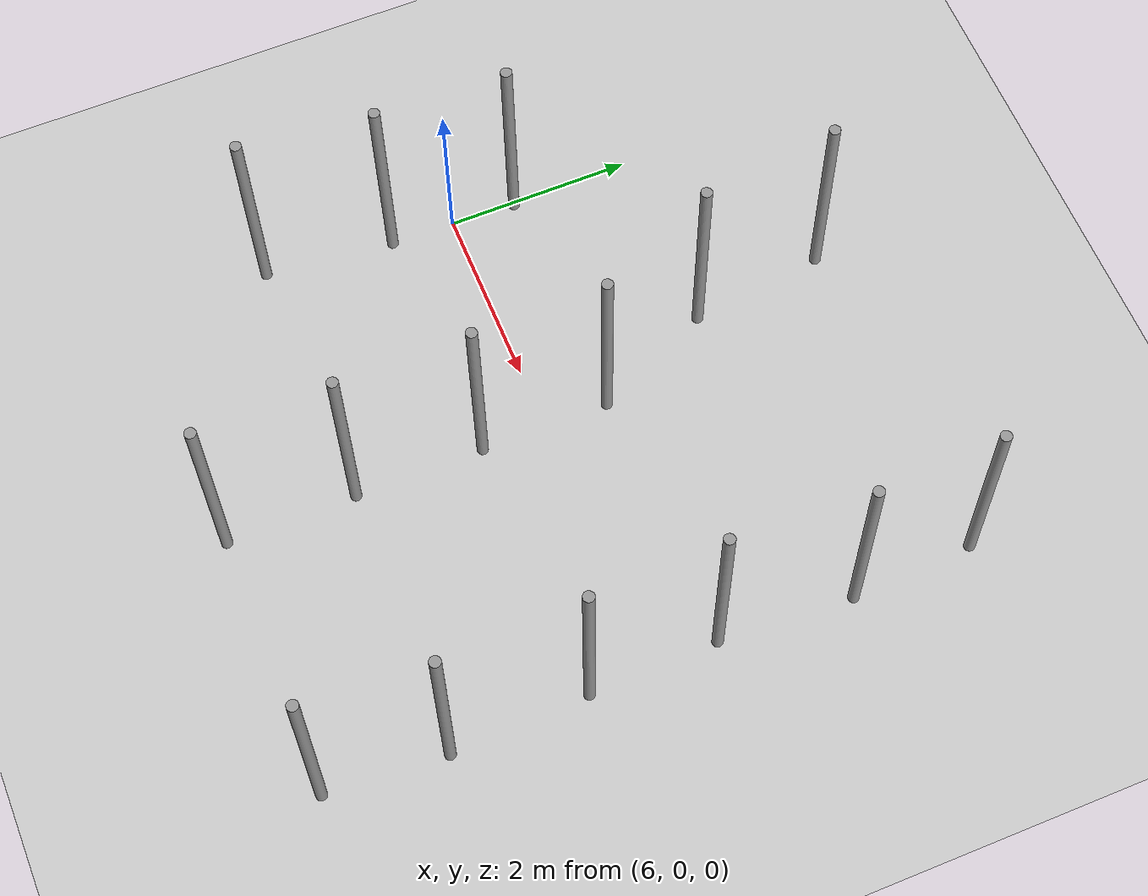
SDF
<sdf version="1.6">
 <world name="default">
  <model name="ground_plane">
   <static>1</static>
   <link name="link">
    <collision name="collision">
     <geometry><plane><normal>0 0 1</normal><size>100 100</size></plane></geometry>
     <surface><friction><ode><mu>100</mu><mu2>50</mu2></ode></friction></surface>
    </collision>
    <visual name="visual">
     <cast_shadows>0</cast_shadows>
     <geometry><plane><normal>0 0 1</normal><size>100 100</size></plane></geometry>
     <material>
      <script><uri>file://media/materials/scripts/gazebo.material</uri><name>Gazebo/Grey</name></script>
     </material>
    </visual>
   </link>
  </model>
  <model name="pole_8">
   <link name="link_0">
    <inertial>
     <mass>0.0364582</mass>
     <inertia>
      <ixx>0.00312124</ixx>
      <ixy>0</ixy>
      <ixz>0</ixz>
      <iyy>0.00312124</iyy>
      <iyz>0</iyz>
      <izz>0.00016615</izz>
     </inertia>
    </inertial>
    <visual name="visual">
     <geometry><cylinder><radius>0.06</radius><length>2.5</length></cylinder></geometry>
     <material>
      <lighting>1</lighting>
      <script><uri>file://media/materials/scripts/gazebo.material</uri><name>Gazebo/Grey</name></script>
      <ambient>0.3 0.3 0.3 1</ambient>
      <diffuse>0.7 0.7 0.7 1</diffuse>
      <specular>0.01 0.01 0.01 1</specular>
      <emissive>0 0 0 1</emissive>
      <shader type="vertex"><normal_map>__default__</normal_map></shader>
     </material>
    </visual>
    <collision name="collision">
     <geometry><cylinder><radius>0.06</radius><length>2.5</length></cylinder></geometry>
     <surface>
      <friction>
       <ode><mu>1</mu><mu2>1</mu2><fdir1>0 0 0</fdir1><slip1>0</slip1><slip2>0</slip2></ode>
       <torsional>
        <coefficient>1</coefficient>
        <patch_radius>0</patch_radius>
        <surface_radius>0</surface_radius>
        <use_patch_radius>1</use_patch_radius>
        <ode><slip>0</slip></ode>
       </torsional>
      </friction>
      <bounce><restitution_coefficient>0</restitution_coefficient><threshold>1e+06</threshold></bounce>
      <contact>
       <collide_without_contact>0</collide_without_contact>
       <collide_without_contact_bitmask>1</collide_without_contact_bitmask>
       <collide_bitmask>1</collide_bitmask>
       <ode>
        <soft_cfm>0</soft_cfm>
        <soft_erp>0.2</soft_erp>
        <kp>1e+13</kp>
        <kd>1</kd>
        <max_vel>0.01</max_vel>
        <min_depth>0</min_depth>
       </ode>
       <bullet>
        <split_impulse>1</split_impulse>
        <split_impulse_penetration_threshold>-0.01</split_impulse_penetration_threshold>
        <soft_cfm>0</soft_cfm>
        <soft_erp>0.2</soft_erp>
        <kp>1e+13</kp>
        <kd>1</kd>
       </bullet>
      </contact>
     </surface>
    </collision>
   </link>
   <static>0</static>
   <pose>5.98907 -0.698539 1.25 -1e-06 0 -0.034385</pose>
  </model>
  <model name="pole_10">
   <link name="link_0">
    <inertial>
     <mass>0.0364582</mass>
     <inertia>
      <ixx>0.00312124</ixx>
      <ixy>0</ixy>
      <ixz>0</ixz>
      <iyy>0.00312124</iyy>
      <iyz>0</iyz>
      <izz>0.00016615</izz>
     </inertia>
    </inertial>
    <visual name="visual">
     <geometry><cylinder><radius>0.06</radius><length>2.5</length></cylinder></geometry>
     <material>
      <lighting>1</lighting>
      <script><uri>file://media/materials/scripts/gazebo.material</uri><name>Gazebo/Grey</name></script>
      <ambient>0.3 0.3 0.3 1</ambient>
      <diffuse>0.7 0.7 0.7 1</diffuse>
      <specular>0.01 0.01 0.01 1</specular>
      <emissive>0 0 0 1</emissive>
      <shader type="vertex"><normal_map>__default__</normal_map></shader>
     </material>
    </visual>
    <collision name="collision">
     <geometry><cylinder><radius>0.06</radius><length>2.5</length></cylinder></geometry>
     <surface>
      <friction>
       <ode><mu>1</mu><mu2>1</mu2><fdir1>0 0 0</fdir1><slip1>0</slip1><slip2>0</slip2></ode>
       <torsional>
        <coefficient>1</coefficient>
        <patch_radius>0</patch_radius>
        <surface_radius>0</surface_radius>
        <use_patch_radius>1</use_patch_radius>
        <ode><slip>0</slip></ode>
       </torsional>
      </friction>
      <bounce><restitution_coefficient>0</restitution_coefficient><threshold>1e+06</threshold></bounce>
      <contact>
       <collide_without_contact>0</collide_without_contact>
       <collide_without_contact_bitmask>1</collide_without_contact_bitmask>
       <collide_bitmask>1</collide_bitmask>
       <ode>
        <soft_cfm>0</soft_cfm>
        <soft_erp>0.2</soft_erp>
        <kp>1e+13</kp>
        <kd>1</kd>
        <max_vel>0.01</max_vel>
        <min_depth>0</min_depth>
       </ode>
       <bullet>
        <split_impulse>1</split_impulse>
        <split_impulse_penetration_threshold>-0.01</split_impulse_penetration_threshold>
        <soft_cfm>0</soft_cfm>
        <soft_erp>0.2</soft_erp>
        <kp>1e+13</kp>
        <kd>1</kd>
       </bullet>
      </contact>
     </surface>
    </collision>
   </link>
   <static>0</static>
   <pose>6.03412 0.70143 1.24999 0 -1e-06 -0.037398</pose>
  </model>
  <model name="pole_11_clone">
   <link name="link_0">
    <inertial>
     <mass>0.0364582</mass>
     <inertia>
      <ixx>0.00312124</ixx>
      <ixy>0</ixy>
      <ixz>0</ixz>
      <iyy>0.00312124</iyy>
      <iyz>0</iyz>
      <izz>0.00016615</izz>
     </inertia>
    </inertial>
    <visual name="visual">
     <geometry><cylinder><radius>0.06</radius><length>2.5</length></cylinder></geometry>
     <material>
      <lighting>1</lighting>
      <script><uri>file://media/materials/scripts/gazebo.material</uri><name>Gazebo/Grey</name></script>
      <ambient>0.3 0.3 0.3 1</ambient>
      <diffuse>0.7 0.7 0.7 1</diffuse>
      <specular>0.01 0.01 0.01 1</specular>
      <emissive>0 0 0 1</emissive>
      <shader type="vertex"><normal_map>__default__</normal_map></shader>
     </material>
    </visual>
    <collision name="collision">
     <geometry><cylinder><radius>0.06</radius><length>2.5</length></cylinder></geometry>
     <surface>
      <friction>
       <ode><mu>1</mu><mu2>1</mu2><fdir1>0 0 0</fdir1><slip1>0</slip1><slip2>0</slip2></ode>
       <torsional>
        <coefficient>1</coefficient>
        <patch_radius>0</patch_radius>
        <surface_radius>0</surface_radius>
        <use_patch_radius>1</use_patch_radius>
        <ode><slip>0</slip></ode>
       </torsional>
      </friction>
      <bounce><restitution_coefficient>0</restitution_coefficient><threshold>1e+06</threshold></bounce>
      <contact>
       <collide_without_contact>0</collide_without_contact>
       <collide_without_contact_bitmask>1</collide_without_contact_bitmask>
       <collide_bitmask>1</collide_bitmask>
       <ode>
        <soft_cfm>0</soft_cfm>
        <soft_erp>0.2</soft_erp>
        <kp>1e+13</kp>
        <kd>1</kd>
        <max_vel>0.01</max_vel>
        <min_depth>0</min_depth>
       </ode>
       <bullet>
        <split_impulse>1</split_impulse>
        <split_impulse_penetration_threshold>-0.01</split_impulse_penetration_threshold>
        <soft_cfm>0</soft_cfm>
        <soft_erp>0.2</soft_erp>
        <kp>1e+13</kp>
        <kd>1</kd>
       </bullet>
      </contact>
     </surface>
    </collision>
   </link>
   <static>0</static>
   <pose>11.621 3.50151 1.25 -1e-06 -0 -0.044909</pose>
  </model>
  <model name="pole_0">
   <link name="link_0">
    <inertial>
     <mass>0.0364582</mass>
     <inertia>
      <ixx>0.00312124</ixx>
      <ixy>0</ixy>
      <ixz>0</ixz>
      <iyy>0.00312124</iyy>
      <iyz>0</iyz>
      <izz>0.00016615</izz>
     </inertia>
    </inertial>
    <visual name="visual">
     <geometry><cylinder><radius>0.06</radius><length>2.5</length></cylinder></geometry>
     <material>
      <lighting>1</lighting>
      <script><uri>file://media/materials/scripts/gazebo.material</uri><name>Gazebo/Grey</name></script>
      <ambient>0.3 0.3 0.3 1</ambient>
      <diffuse>0.7 0.7 0.7 1</diffuse>
      <specular>0.01 0.01 0.01 1</specular>
      <emissive>0 0 0 1</emissive>
      <shader type="vertex"><normal_map>__default__</normal_map></shader>
     </material>
    </visual>
    <collision name="collision">
     <geometry><cylinder><radius>0.06</radius><length>2.5</length></cylinder></geometry>
     <surface>
      <friction>
       <ode><mu>1</mu><mu2>1</mu2><fdir1>0 0 0</fdir1><slip1>0</slip1><slip2>0</slip2></ode>
       <torsional>
        <coefficient>1</coefficient>
        <patch_radius>0</patch_radius>
        <surface_radius>0</surface_radius>
        <use_patch_radius>1</use_patch_radius>
        <ode><slip>0</slip></ode>
       </torsional>
      </friction>
      <bounce><restitution_coefficient>0</restitution_coefficient><threshold>1e+06</threshold></bounce>
      <contact>
       <collide_without_contact>0</collide_without_contact>
       <collide_without_contact_bitmask>1</collide_without_contact_bitmask>
       <collide_bitmask>1</collide_bitmask>
       <ode>
        <soft_cfm>0</soft_cfm>
        <soft_erp>0.2</soft_erp>
        <kp>1e+13</kp>
        <kd>1</kd>
        <max_vel>0.01</max_vel>
        <min_depth>0</min_depth>
       </ode>
       <bullet>
        <split_impulse>1</split_impulse>
        <split_impulse_penetration_threshold>-0.01</split_impulse_penetration_threshold>
        <soft_cfm>0</soft_cfm>
        <soft_erp>0.2</soft_erp>
        <kp>1e+13</kp>
        <kd>1</kd>
       </bullet>
      </contact>
     </surface>
    </collision>
   </link>
   <static>0</static>
   <pose>7.92456 3.46898 1.25 -0 1e-06 -0.034419</pose>
  </model>
  <model name="pole_1">
   <link name="link_0">
    <inertial>
     <mass>0.0364582</mass>
     <inertia>
      <ixx>0.00312124</ixx>
      <ixy>0</ixy>
      <ixz>0</ixz>
      <iyy>0.00312124</iyy>
      <iyz>0</iyz>
      <izz>0.00016615</izz>
     </inertia>
    </inertial>
    <visual name="visual">
     <geometry><cylinder><radius>0.06</radius><length>2.5</length></cylinder></geometry>
     <material>
      <lighting>1</lighting>
      <script><uri>file://media/materials/scripts/gazebo.material</uri><name>Gazebo/Grey</name></script>
      <ambient>0.3 0.3 0.3 1</ambient>
      <diffuse>0.7 0.7 0.7 1</diffuse>
      <specular>0.01 0.01 0.01 1</specular>
      <emissive>0 0 0 1</emissive>
      <shader type="vertex"><normal_map>__default__</normal_map></shader>
     </material>
    </visual>
    <collision name="collision">
     <geometry><cylinder><radius>0.06</radius><length>2.5</length></cylinder></geometry>
     <surface>
      <friction>
       <ode><mu>1</mu><mu2>1</mu2><fdir1>0 0 0</fdir1><slip1>0</slip1><slip2>0</slip2></ode>
       <torsional>
        <coefficient>1</coefficient>
        <patch_radius>0</patch_radius>
        <surface_radius>0</surface_radius>
        <use_patch_radius>1</use_patch_radius>
        <ode><slip>0</slip></ode>
       </torsional>
      </friction>
      <bounce><restitution_coefficient>0</restitution_coefficient><threshold>1e+06</threshold></bounce>
      <contact>
       <collide_without_contact>0</collide_without_contact>
       <collide_without_contact_bitmask>1</collide_without_contact_bitmask>
       <collide_bitmask>1</collide_bitmask>
       <ode>
        <soft_cfm>0</soft_cfm>
        <soft_erp>0.2</soft_erp>
        <kp>1e+13</kp>
        <kd>1</kd>
        <max_vel>0.01</max_vel>
        <min_depth>0</min_depth>
       </ode>
       <bullet>
        <split_impulse>1</split_impulse>
        <split_impulse_penetration_threshold>-0.01</split_impulse_penetration_threshold>
        <soft_cfm>0</soft_cfm>
        <soft_erp>0.2</soft_erp>
        <kp>1e+13</kp>
        <kd>1</kd>
       </bullet>
      </contact>
     </surface>
    </collision>
   </link>
   <static>0</static>
   <pose>11.6854 2.16334 1.25 -1e-06 -1e-06 -0.035109</pose>
  </model>
  <model name="pole_3">
   <link name="link_0">
    <inertial>
     <mass>0.0364582</mass>
     <inertia>
      <ixx>0.00312124</ixx>
      <ixy>0</ixy>
      <ixz>0</ixz>
      <iyy>0.00312124</iyy>
      <iyz>0</iyz>
      <izz>0.00016615</izz>
     </inertia>
    </inertial>
    <visual name="visual">
     <geometry><cylinder><radius>0.06</radius><length>2.5</length></cylinder></geometry>
     <material>
      <lighting>1</lighting>
      <script><uri>file://media/materials/scripts/gazebo.material</uri><name>Gazebo/Grey</name></script>
      <ambient>0.3 0.3 0.3 1</ambient>
      <diffuse>0.7 0.7 0.7 1</diffuse>
      <specular>0.01 0.01 0.01 1</specular>
      <emissive>0 0 0 1</emissive>
      <shader type="vertex"><normal_map>__default__</normal_map></shader>
     </material>
    </visual>
    <collision name="collision">
     <geometry><cylinder><radius>0.06</radius><length>2.5</length></cylinder></geometry>
     <surface>
      <friction>
       <ode><mu>1</mu><mu2>1</mu2><fdir1>0 0 0</fdir1><slip1>0</slip1><slip2>0</slip2></ode>
       <torsional>
        <coefficient>1</coefficient>
        <patch_radius>0</patch_radius>
        <surface_radius>0</surface_radius>
        <use_patch_radius>1</use_patch_radius>
        <ode><slip>0</slip></ode>
       </torsional>
      </friction>
      <bounce><restitution_coefficient>0</restitution_coefficient><threshold>1e+06</threshold></bounce>
      <contact>
       <collide_without_contact>0</collide_without_contact>
       <collide_without_contact_bitmask>1</collide_without_contact_bitmask>
       <collide_bitmask>1</collide_bitmask>
       <ode>
        <soft_cfm>0</soft_cfm>
        <soft_erp>0.2</soft_erp>
        <kp>1e+13</kp>
        <kd>1</kd>
        <max_vel>0.01</max_vel>
        <min_depth>0</min_depth>
       </ode>
       <bullet>
        <split_impulse>1</split_impulse>
        <split_impulse_penetration_threshold>-0.01</split_impulse_penetration_threshold>
        <soft_cfm>0</soft_cfm>
        <soft_erp>0.2</soft_erp>
        <kp>1e+13</kp>
        <kd>1</kd>
       </bullet>
      </contact>
     </surface>
    </collision>
   </link>
   <static>0</static>
   <pose>8.70019 -0.69848 1.24999 -0 1e-06 -0.030872</pose>
  </model>
  <model name="pole_5">
   <link name="link_0">
    <inertial>
     <mass>0.0364582</mass>
     <inertia>
      <ixx>0.00312124</ixx>
      <ixy>0</ixy>
      <ixz>0</ixz>
      <iyy>0.00312124</iyy>
      <iyz>0</iyz>
      <izz>0.00016615</izz>
     </inertia>
    </inertial>
    <visual name="visual">
     <geometry><cylinder><radius>0.06</radius><length>2.5</length></cylinder></geometry>
     <material>
      <lighting>1</lighting>
      <script><uri>file://media/materials/scripts/gazebo.material</uri><name>Gazebo/Grey</name></script>
      <ambient>0.3 0.3 0.3 1</ambient>
      <diffuse>0.7 0.7 0.7 1</diffuse>
      <specular>0.01 0.01 0.01 1</specular>
      <emissive>0 0 0 1</emissive>
      <shader type="vertex"><normal_map>__default__</normal_map></shader>
     </material>
    </visual>
    <collision name="collision">
     <geometry><cylinder><radius>0.06</radius><length>2.5</length></cylinder></geometry>
     <surface>
      <friction>
       <ode><mu>1</mu><mu2>1</mu2><fdir1>0 0 0</fdir1><slip1>0</slip1><slip2>0</slip2></ode>
       <torsional>
        <coefficient>1</coefficient>
        <patch_radius>0</patch_radius>
        <surface_radius>0</surface_radius>
        <use_patch_radius>1</use_patch_radius>
        <ode><slip>0</slip></ode>
       </torsional>
      </friction>
      <bounce><restitution_coefficient>0</restitution_coefficient><threshold>1e+06</threshold></bounce>
      <contact>
       <collide_without_contact>0</collide_without_contact>
       <collide_without_contact_bitmask>1</collide_without_contact_bitmask>
       <collide_bitmask>1</collide_bitmask>
       <ode>
        <soft_cfm>0</soft_cfm>
        <soft_erp>0.2</soft_erp>
        <kp>1e+13</kp>
        <kd>1</kd>
        <max_vel>0.01</max_vel>
        <min_depth>0</min_depth>
       </ode>
       <bullet>
        <split_impulse>1</split_impulse>
        <split_impulse_penetration_threshold>-0.01</split_impulse_penetration_threshold>
        <soft_cfm>0</soft_cfm>
        <soft_erp>0.2</soft_erp>
        <kp>1e+13</kp>
        <kd>1</kd>
       </bullet>
      </contact>
     </surface>
    </collision>
   </link>
   <static>0</static>
   <pose>11.634 -0.698627 1.24999 0 3e-06 -0.029256</pose>
  </model>
  <model name="pole_6">
   <link name="link_0">
    <inertial>
     <mass>0.0364582</mass>
     <inertia>
      <ixx>0.00312124</ixx>
      <ixy>0</ixy>
      <ixz>0</ixz>
      <iyy>0.00312124</iyy>
      <iyz>0</iyz>
      <izz>0.00016615</izz>
     </inertia>
    </inertial>
    <visual name="visual">
     <geometry><cylinder><radius>0.06</radius><length>2.5</length></cylinder></geometry>
     <material>
      <lighting>1</lighting>
      <script><uri>file://media/materials/scripts/gazebo.material</uri><name>Gazebo/Grey</name></script>
      <ambient>0.3 0.3 0.3 1</ambient>
      <diffuse>0.7 0.7 0.7 1</diffuse>
      <specular>0.01 0.01 0.01 1</specular>
      <emissive>0 0 0 1</emissive>
      <shader type="vertex"><normal_map>__default__</normal_map></shader>
     </material>
    </visual>
    <collision name="collision">
     <geometry><cylinder><radius>0.06</radius><length>2.5</length></cylinder></geometry>
     <surface>
      <friction>
       <ode><mu>1</mu><mu2>1</mu2><fdir1>0 0 0</fdir1><slip1>0</slip1><slip2>0</slip2></ode>
       <torsional>
        <coefficient>1</coefficient>
        <patch_radius>0</patch_radius>
        <surface_radius>0</surface_radius>
        <use_patch_radius>1</use_patch_radius>
        <ode><slip>0</slip></ode>
       </torsional>
      </friction>
      <bounce><restitution_coefficient>0</restitution_coefficient><threshold>1e+06</threshold></bounce>
      <contact>
       <collide_without_contact>0</collide_without_contact>
       <collide_without_contact_bitmask>1</collide_without_contact_bitmask>
       <collide_bitmask>1</collide_bitmask>
       <ode>
        <soft_cfm>0</soft_cfm>
        <soft_erp>0.2</soft_erp>
        <kp>1e+13</kp>
        <kd>1</kd>
        <max_vel>0.01</max_vel>
        <min_depth>0</min_depth>
       </ode>
       <bullet>
        <split_impulse>1</split_impulse>
        <split_impulse_penetration_threshold>-0.01</split_impulse_penetration_threshold>
        <soft_cfm>0</soft_cfm>
        <soft_erp>0.2</soft_erp>
        <kp>1e+13</kp>
        <kd>1</kd>
       </bullet>
      </contact>
     </surface>
    </collision>
   </link>
   <static>0</static>
   <pose>11.6001 0.701096 1.25 0 1e-06 -0.031065</pose>
  </model>
  <model name="pole_7">
   <link name="link_0">
    <inertial>
     <mass>0.0364582</mass>
     <inertia>
      <ixx>0.00312124</ixx>
      <ixy>0</ixy>
      <ixz>0</ixz>
      <iyy>0.00312124</iyy>
      <iyz>0</iyz>
      <izz>0.00016615</izz>
     </inertia>
    </inertial>
    <visual name="visual">
     <geometry><cylinder><radius>0.06</radius><length>2.5</length></cylinder></geometry>
     <material>
      <lighting>1</lighting>
      <script><uri>file://media/materials/scripts/gazebo.material</uri><name>Gazebo/Grey</name></script>
      <ambient>0.3 0.3 0.3 1</ambient>
      <diffuse>0.7 0.7 0.7 1</diffuse>
      <specular>0.01 0.01 0.01 1</specular>
      <emissive>0 0 0 1</emissive>
      <shader type="vertex"><normal_map>__default__</normal_map></shader>
     </material>
    </visual>
    <collision name="collision">
     <geometry><cylinder><radius>0.06</radius><length>2.5</length></cylinder></geometry>
     <surface>
      <friction>
       <ode><mu>1</mu><mu2>1</mu2><fdir1>0 0 0</fdir1><slip1>0</slip1><slip2>0</slip2></ode>
       <torsional>
        <coefficient>1</coefficient>
        <patch_radius>0</patch_radius>
        <surface_radius>0</surface_radius>
        <use_patch_radius>1</use_patch_radius>
        <ode><slip>0</slip></ode>
       </torsional>
      </friction>
      <bounce><restitution_coefficient>0</restitution_coefficient><threshold>1e+06</threshold></bounce>
      <contact>
       <collide_without_contact>0</collide_without_contact>
       <collide_without_contact_bitmask>1</collide_without_contact_bitmask>
       <collide_bitmask>1</collide_bitmask>
       <ode>
        <soft_cfm>0</soft_cfm>
        <soft_erp>0.2</soft_erp>
        <kp>1e+13</kp>
        <kd>1</kd>
        <max_vel>0.01</max_vel>
        <min_depth>0</min_depth>
       </ode>
       <bullet>
        <split_impulse>1</split_impulse>
        <split_impulse_penetration_threshold>-0.01</split_impulse_penetration_threshold>
        <soft_cfm>0</soft_cfm>
        <soft_erp>0.2</soft_erp>
        <kp>1e+13</kp>
        <kd>1</kd>
       </bullet>
      </contact>
     </surface>
    </collision>
   </link>
   <static>0</static>
   <pose>8.70016 0.701327 1.24999 -1e-06 1e-06 -0.027757</pose>
  </model>
  <model name="pole_15">
   <link name="link_0">
    <inertial>
     <mass>0.0364582</mass>
     <inertia>
      <ixx>0.00312124</ixx>
      <ixy>0</ixy>
      <ixz>0</ixz>
      <iyy>0.00312124</iyy>
      <iyz>0</iyz>
      <izz>0.00016615</izz>
     </inertia>
    </inertial>
    <visual name="visual">
     <geometry><cylinder><radius>0.06</radius><length>2.5</length></cylinder></geometry>
     <material>
      <lighting>1</lighting>
      <script><uri>file://media/materials/scripts/gazebo.material</uri><name>Gazebo/Grey</name></script>
      <ambient>0.3 0.3 0.3 1</ambient>
      <diffuse>0.7 0.7 0.7 1</diffuse>
      <specular>0.01 0.01 0.01 1</specular>
      <emissive>0 0 0 1</emissive>
      <shader type="vertex"><normal_map>__default__</normal_map></shader>
     </material>
    </visual>
    <collision name="collision">
     <geometry><cylinder><radius>0.06</radius><length>2.5</length></cylinder></geometry>
     <surface>
      <friction>
       <ode><mu>1</mu><mu2>1</mu2><fdir1>0 0 0</fdir1><slip1>0</slip1><slip2>0</slip2></ode>
       <torsional>
        <coefficient>1</coefficient>
        <patch_radius>0</patch_radius>
        <surface_radius>0</surface_radius>
        <use_patch_radius>1</use_patch_radius>
        <ode><slip>0</slip></ode>
       </torsional>
      </friction>
      <bounce><restitution_coefficient>0</restitution_coefficient><threshold>1e+06</threshold></bounce>
      <contact>
       <collide_without_contact>0</collide_without_contact>
       <collide_without_contact_bitmask>1</collide_without_contact_bitmask>
       <collide_bitmask>1</collide_bitmask>
       <ode>
        <soft_cfm>0</soft_cfm>
        <soft_erp>0.2</soft_erp>
        <kp>1e+13</kp>
        <kd>1</kd>
        <max_vel>0.01</max_vel>
        <min_depth>0</min_depth>
       </ode>
       <bullet>
        <split_impulse>1</split_impulse>
        <split_impulse_penetration_threshold>-0.01</split_impulse_penetration_threshold>
        <soft_cfm>0</soft_cfm>
        <soft_erp>0.2</soft_erp>
        <kp>1e+13</kp>
        <kd>1</kd>
       </bullet>
      </contact>
     </surface>
    </collision>
   </link>
   <static>0</static>
   <pose>11.6 -3.49962 1.25 -1e-06 1e-06 -0.025364</pose>
  </model>
  <model name="pole_17">
   <link name="link_0">
    <inertial>
     <mass>0.0364582</mass>
     <inertia>
      <ixx>0.00312124</ixx>
      <ixy>0</ixy>
      <ixz>0</ixz>
      <iyy>0.00312124</iyy>
      <iyz>0</iyz>
      <izz>0.00016615</izz>
     </inertia>
    </inertial>
    <visual name="visual">
     <geometry><cylinder><radius>0.06</radius><length>2.5</length></cylinder></geometry>
     <material>
      <lighting>1</lighting>
      <script><uri>file://media/materials/scripts/gazebo.material</uri><name>Gazebo/Grey</name></script>
      <ambient>0.3 0.3 0.3 1</ambient>
      <diffuse>0.7 0.7 0.7 1</diffuse>
      <specular>0.01 0.01 0.01 1</specular>
      <emissive>0 0 0 1</emissive>
      <shader type="vertex"><normal_map>__default__</normal_map></shader>
     </material>
    </visual>
    <collision name="collision">
     <geometry><cylinder><radius>0.06</radius><length>2.5</length></cylinder></geometry>
     <surface>
      <friction>
       <ode><mu>1</mu><mu2>1</mu2><fdir1>0 0 0</fdir1><slip1>0</slip1><slip2>0</slip2></ode>
       <torsional>
        <coefficient>1</coefficient>
        <patch_radius>0</patch_radius>
        <surface_radius>0</surface_radius>
        <use_patch_radius>1</use_patch_radius>
        <ode><slip>0</slip></ode>
       </torsional>
      </friction>
      <bounce><restitution_coefficient>0</restitution_coefficient><threshold>1e+06</threshold></bounce>
      <contact>
       <collide_without_contact>0</collide_without_contact>
       <collide_without_contact_bitmask>1</collide_without_contact_bitmask>
       <collide_bitmask>1</collide_bitmask>
       <ode>
        <soft_cfm>0</soft_cfm>
        <soft_erp>0.2</soft_erp>
        <kp>1e+13</kp>
        <kd>1</kd>
        <max_vel>0.01</max_vel>
        <min_depth>0</min_depth>
       </ode>
       <bullet>
        <split_impulse>1</split_impulse>
        <split_impulse_penetration_threshold>-0.01</split_impulse_penetration_threshold>
        <soft_cfm>0</soft_cfm>
        <soft_erp>0.2</soft_erp>
        <kp>1e+13</kp>
        <kd>1</kd>
       </bullet>
      </contact>
     </surface>
    </collision>
   </link>
   <static>0</static>
   <pose>5.83622 -2.09934 1.24999 -0 1e-06 -0.02433</pose>
  </model>
  <model name="pole_20">
   <link name="link_0">
    <inertial>
     <mass>0.0364582</mass>
     <inertia>
      <ixx>0.00312124</ixx>
      <ixy>0</ixy>
      <ixz>0</ixz>
      <iyy>0.00312124</iyy>
      <iyz>0</iyz>
      <izz>0.00016615</izz>
     </inertia>
    </inertial>
    <visual name="visual">
     <geometry><cylinder><radius>0.06</radius><length>2.5</length></cylinder></geometry>
     <material>
      <lighting>1</lighting>
      <script><uri>file://media/materials/scripts/gazebo.material</uri><name>Gazebo/Grey</name></script>
      <ambient>0.3 0.3 0.3 1</ambient>
      <diffuse>0.7 0.7 0.7 1</diffuse>
      <specular>0.01 0.01 0.01 1</specular>
      <emissive>0 0 0 1</emissive>
      <shader type="vertex"><normal_map>__default__</normal_map></shader>
     </material>
    </visual>
    <collision name="collision">
     <geometry><cylinder><radius>0.06</radius><length>2.5</length></cylinder></geometry>
     <surface>
      <friction>
       <ode><mu>1</mu><mu2>1</mu2><fdir1>0 0 0</fdir1><slip1>0</slip1><slip2>0</slip2></ode>
       <torsional>
        <coefficient>1</coefficient>
        <patch_radius>0</patch_radius>
        <surface_radius>0</surface_radius>
        <use_patch_radius>1</use_patch_radius>
        <ode><slip>0</slip></ode>
       </torsional>
      </friction>
      <bounce><restitution_coefficient>0</restitution_coefficient><threshold>1e+06</threshold></bounce>
      <contact>
       <collide_without_contact>0</collide_without_contact>
       <collide_without_contact_bitmask>1</collide_without_contact_bitmask>
       <collide_bitmask>1</collide_bitmask>
       <ode>
        <soft_cfm>0</soft_cfm>
        <soft_erp>0.2</soft_erp>
        <kp>1e+13</kp>
        <kd>1</kd>
        <max_vel>0.01</max_vel>
        <min_depth>0</min_depth>
       </ode>
       <bullet>
        <split_impulse>1</split_impulse>
        <split_impulse_penetration_threshold>-0.01</split_impulse_penetration_threshold>
        <soft_cfm>0</soft_cfm>
        <soft_erp>0.2</soft_erp>
        <kp>1e+13</kp>
        <kd>1</kd>
       </bullet>
      </contact>
     </surface>
    </collision>
   </link>
   <static>0</static>
   <pose>11.6918 -2.19609 1.25 -1e-06 -4e-06 -0.024557</pose>
  </model>
  <model name="pole_21">
   <link name="link_0">
    <inertial>
     <mass>0.0364582</mass>
     <inertia>
      <ixx>0.00312124</ixx>
      <ixy>0</ixy>
      <ixz>0</ixz>
      <iyy>0.00312124</iyy>
      <iyz>0</iyz>
      <izz>0.00016615</izz>
     </inertia>
    </inertial>
    <visual name="visual">
     <geometry><cylinder><radius>0.06</radius><length>2.5</length></cylinder></geometry>
     <material>
      <lighting>1</lighting>
      <script><uri>file://media/materials/scripts/gazebo.material</uri><name>Gazebo/Grey</name></script>
      <ambient>0.3 0.3 0.3 1</ambient>
      <diffuse>0.7 0.7 0.7 1</diffuse>
      <specular>0.01 0.01 0.01 1</specular>
      <emissive>0 0 0 1</emissive>
      <shader type="vertex"><normal_map>__default__</normal_map></shader>
     </material>
    </visual>
    <collision name="collision">
     <geometry><cylinder><radius>0.06</radius><length>2.5</length></cylinder></geometry>
     <surface>
      <friction>
       <ode><mu>1</mu><mu2>1</mu2><fdir1>0 0 0</fdir1><slip1>0</slip1><slip2>0</slip2></ode>
       <torsional>
        <coefficient>1</coefficient>
        <patch_radius>0</patch_radius>
        <surface_radius>0</surface_radius>
        <use_patch_radius>1</use_patch_radius>
        <ode><slip>0</slip></ode>
       </torsional>
      </friction>
      <bounce><restitution_coefficient>0</restitution_coefficient><threshold>1e+06</threshold></bounce>
      <contact>
       <collide_without_contact>0</collide_without_contact>
       <collide_without_contact_bitmask>1</collide_without_contact_bitmask>
       <collide_bitmask>1</collide_bitmask>
       <ode>
        <soft_cfm>0</soft_cfm>
        <soft_erp>0.2</soft_erp>
        <kp>1e+13</kp>
        <kd>1</kd>
        <max_vel>0.01</max_vel>
        <min_depth>0</min_depth>
       </ode>
       <bullet>
        <split_impulse>1</split_impulse>
        <split_impulse_penetration_threshold>-0.01</split_impulse_penetration_threshold>
        <soft_cfm>0</soft_cfm>
        <soft_erp>0.2</soft_erp>
        <kp>1e+13</kp>
        <kd>1</kd>
       </bullet>
      </contact>
     </surface>
    </collision>
   </link>
   <static>0</static>
   <pose>8.69985 -3.49951 1.25 1e-06 1e-06 0.66681</pose>
  </model>
  <model name="pole_22">
   <link name="link_0">
    <inertial>
     <mass>0.0364582</mass>
     <inertia>
      <ixx>0.00312124</ixx>
      <ixy>0</ixy>
      <ixz>0</ixz>
      <iyy>0.00312124</iyy>
      <iyz>0</iyz>
      <izz>0.00016615</izz>
     </inertia>
    </inertial>
    <visual name="visual">
     <geometry><cylinder><radius>0.06</radius><length>2.5</length></cylinder></geometry>
     <material>
      <lighting>1</lighting>
      <script><uri>file://media/materials/scripts/gazebo.material</uri><name>Gazebo/Grey</name></script>
      <ambient>0.3 0.3 0.3 1</ambient>
      <diffuse>0.7 0.7 0.7 1</diffuse>
      <specular>0.01 0.01 0.01 1</specular>
      <emissive>0 0 0 1</emissive>
      <shader type="vertex"><normal_map>__default__</normal_map></shader>
     </material>
    </visual>
    <collision name="collision">
     <geometry><cylinder><radius>0.06</radius><length>2.5</length></cylinder></geometry>
     <surface>
      <friction>
       <ode><mu>1</mu><mu2>1</mu2><fdir1>0 0 0</fdir1><slip1>0</slip1><slip2>0</slip2></ode>
       <torsional>
        <coefficient>1</coefficient>
        <patch_radius>0</patch_radius>
        <surface_radius>0</surface_radius>
        <use_patch_radius>1</use_patch_radius>
        <ode><slip>0</slip></ode>
       </torsional>
      </friction>
      <bounce><restitution_coefficient>0</restitution_coefficient><threshold>1e+06</threshold></bounce>
      <contact>
       <collide_without_contact>0</collide_without_contact>
       <collide_without_contact_bitmask>1</collide_without_contact_bitmask>
       <collide_bitmask>1</collide_bitmask>
       <ode>
        <soft_cfm>0</soft_cfm>
        <soft_erp>0.2</soft_erp>
        <kp>1e+13</kp>
        <kd>1</kd>
        <max_vel>0.01</max_vel>
        <min_depth>0</min_depth>
       </ode>
       <bullet>
        <split_impulse>1</split_impulse>
        <split_impulse_penetration_threshold>-0.01</split_impulse_penetration_threshold>
        <soft_cfm>0</soft_cfm>
        <soft_erp>0.2</soft_erp>
        <kp>1e+13</kp>
        <kd>1</kd>
       </bullet>
      </contact>
     </surface>
    </collision>
   </link>
   <static>0</static>
   <pose>8.70009 -2.09947 1.25 -0 -1e-06 -0.020173</pose>
  </model>
  <model name="pole_23">
   <link name="link_0">
    <inertial>
     <mass>0.0364582</mass>
     <inertia>
      <ixx>0.00312124</ixx>
      <ixy>0</ixy>
      <ixz>0</ixz>
      <iyy>0.00312124</iyy>
      <iyz>0</iyz>
      <izz>0.00016615</izz>
     </inertia>
    </inertial>
    <visual name="visual">
     <geometry><cylinder><radius>0.06</radius><length>2.5</length></cylinder></geometry>
     <material>
      <lighting>1</lighting>
      <script><uri>file://media/materials/scripts/gazebo.material</uri><name>Gazebo/Grey</name></script>
      <ambient>0.3 0.3 0.3 1</ambient>
      <diffuse>0.7 0.7 0.7 1</diffuse>
      <specular>0.01 0.01 0.01 1</specular>
      <emissive>0 0 0 1</emissive>
      <shader type="vertex"><normal_map>__default__</normal_map></shader>
     </material>
    </visual>
    <collision name="collision">
     <geometry><cylinder><radius>0.06</radius><length>2.5</length></cylinder></geometry>
     <surface>
      <friction>
       <ode><mu>1</mu><mu2>1</mu2><fdir1>0 0 0</fdir1><slip1>0</slip1><slip2>0</slip2></ode>
       <torsional>
        <coefficient>1</coefficient>
        <patch_radius>0</patch_radius>
        <surface_radius>0</surface_radius>
        <use_patch_radius>1</use_patch_radius>
        <ode><slip>0</slip></ode>
       </torsional>
      </friction>
      <bounce><restitution_coefficient>0</restitution_coefficient><threshold>1e+06</threshold></bounce>
      <contact>
       <collide_without_contact>0</collide_without_contact>
       <collide_without_contact_bitmask>1</collide_without_contact_bitmask>
       <collide_bitmask>1</collide_bitmask>
       <ode>
        <soft_cfm>0</soft_cfm>
        <soft_erp>0.2</soft_erp>
        <kp>1e+13</kp>
        <kd>1</kd>
        <max_vel>0.01</max_vel>
        <min_depth>0</min_depth>
       </ode>
       <bullet>
        <split_impulse>1</split_impulse>
        <split_impulse_penetration_threshold>-0.01</split_impulse_penetration_threshold>
        <soft_cfm>0</soft_cfm>
        <soft_erp>0.2</soft_erp>
        <kp>1e+13</kp>
        <kd>1</kd>
       </bullet>
      </contact>
     </surface>
    </collision>
   </link>
   <static>0</static>
   <pose>8.11223 1.99699 1.25 -1e-06 1e-06 -0.021699</pose>
  </model>
 </world>
</sdf>
